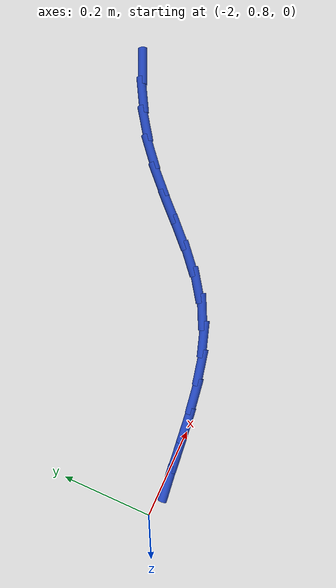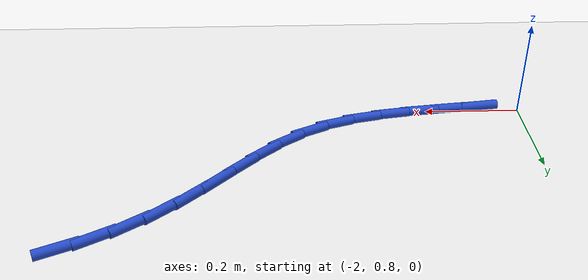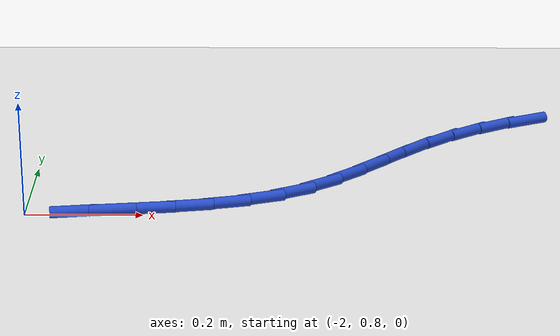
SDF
<sdf version="1.6">
 <world name="default">
  <model name="ground_plane">
   <static>1</static>
   <link name="link">
    <collision name="collision">
     <geometry><plane><normal>0 0 1</normal><size>100 100</size></plane></geometry>
     <surface><friction><ode><mu>100</mu><mu2>50</mu2></ode></friction></surface>
    </collision>
    <visual name="visual">
     <cast_shadows>0</cast_shadows>
     <geometry><plane><normal>0 0 1</normal><size>100 100</size></plane></geometry>
     <material>
      <script><uri>file://media/materials/scripts/gazebo.material</uri><name>Gazebo/WhiteGlow</name></script>
     </material>
    </visual>
   </link>
  </model>
  <model name="line">
   <link name="link_30">
    <pose>-1.1135426268761766 1.2215615842198069 0.01 0 1.57 0.42800671663458834</pose>
    <collision name="collision">
     <geometry><cylinder><radius>0.01</radius><length>0.08</length></cylinder></geometry>
    </collision>
    <visual name="visual">
     <material>
      <script><name>Gazebo/Blue</name><uri>file://media/materials/scripts/gazebo.material</uri></script>
     </material>
     <geometry><cylinder><radius>0.01</radius><length>0.08</length></cylinder></geometry>
    </visual>
   </link>
   <link name="link_31">
    <pose>-1.1711381497687974 1.195285891175266 0.01 0 1.57 0.52345021329601</pose>
    <collision name="collision">
     <geometry><cylinder><radius>0.01</radius><length>0.08</length></cylinder></geometry>
    </collision>
    <visual name="visual">
     <material>
      <script><name>Gazebo/Blue</name><uri>file://media/materials/scripts/gazebo.material</uri></script>
     </material>
     <geometry><cylinder><radius>0.01</radius><length>0.08</length></cylinder></geometry>
    </visual>
   </link>
   <link name="link_32">
    <pose>-1.226088558995479 1.1635711414284515 0.01 0 1.57 0.6207367791391263</pose>
    <collision name="collision">
     <geometry><cylinder><radius>0.01</radius><length>0.08</length></cylinder></geometry>
    </collision>
    <visual name="visual">
     <material>
      <script><name>Gazebo/Blue</name><uri>file://media/materials/scripts/gazebo.material</uri></script>
     </material>
     <geometry><cylinder><radius>0.01</radius><length>0.08</length></cylinder></geometry>
    </visual>
   </link>
   <link name="link_33">
    <pose>-1.277481644606737 1.1268239605972783 0.01 0 1.57 0.7170533390082382</pose>
    <collision name="collision">
     <geometry><cylinder><radius>0.01</radius><length>0.08</length></cylinder></geometry>
    </collision>
    <visual name="visual">
     <material>
      <script><name>Gazebo/Blue</name><uri>file://media/materials/scripts/gazebo.material</uri></script>
     </material>
     <geometry><cylinder><radius>0.01</radius><length>0.08</length></cylinder></geometry>
    </visual>
   </link>
   <link name="link_34">
    <pose>-1.3247097782590604 1.0856472645593227 0.01 0 1.57 0.7828931909869404</pose>
    <collision name="collision">
     <geometry><cylinder><radius>0.01</radius><length>0.08</length></cylinder></geometry>
    </collision>
    <visual name="visual">
     <material>
      <script><name>Gazebo/Blue</name><uri>file://media/materials/scripts/gazebo.material</uri></script>
     </material>
     <geometry><cylinder><radius>0.01</radius><length>0.08</length></cylinder></geometry>
    </visual>
   </link>
   <link name="link_35">
    <pose>-1.3688487571703896 1.0417288674069503 0.01 0 1.57 0.8071066593342363</pose>
    <collision name="collision">
     <geometry><cylinder><radius>0.01</radius><length>0.08</length></cylinder></geometry>
    </collision>
    <visual name="visual">
     <material>
      <script><name>Gazebo/Blue</name><uri>file://media/materials/scripts/gazebo.material</uri></script>
     </material>
     <geometry><cylinder><radius>0.01</radius><length>0.08</length></cylinder></geometry>
    </visual>
   </link>
   <link name="link_36">
    <pose>-1.4115527672647372 0.9971293308544245 0.01 0 1.57 0.788834546426766</pose>
    <collision name="collision">
     <geometry><cylinder><radius>0.01</radius><length>0.08</length></cylinder></geometry>
    </collision>
    <visual name="visual">
     <material>
      <script><name>Gazebo/Blue</name><uri>file://media/materials/scripts/gazebo.material</uri></script>
     </material>
     <geometry><cylinder><radius>0.01</radius><length>0.08</length></cylinder></geometry>
    </visual>
   </link>
   <link name="link_37">
    <pose>-1.4544765196927487 0.9539095551028706 0.01 0 1.57 0.7261244506977912</pose>
    <collision name="collision">
     <geometry><cylinder><radius>0.01</radius><length>0.08</length></cylinder></geometry>
    </collision>
    <visual name="visual">
     <material>
      <script><name>Gazebo/Blue</name><uri>file://media/materials/scripts/gazebo.material</uri></script>
     </material>
     <geometry><cylinder><radius>0.01</radius><length>0.08</length></cylinder></geometry>
    </visual>
   </link>
   <link name="link_38">
    <pose>-1.4992747256050685 0.9141304403534144 0.01 0 1.57 0.6169258833356325</pose>
    <collision name="collision">
     <geometry><cylinder><radius>0.01</radius><length>0.08</length></cylinder></geometry>
    </collision>
    <visual name="visual">
     <material>
      <script><name>Gazebo/Blue</name><uri>file://media/materials/scripts/gazebo.material</uri></script>
     </material>
     <geometry><cylinder><radius>0.01</radius><length>0.08</length></cylinder></geometry>
    </visual>
   </link>
   <link name="link_39">
    <pose>-1.5476020961523411 0.8798528868071804 0.01 0 1.57 0.46648202412776013</pose>
    <collision name="collision">
     <geometry><cylinder><radius>0.01</radius><length>0.08</length></cylinder></geometry>
    </collision>
    <visual name="visual">
     <material>
      <script><name>Gazebo/Blue</name><uri>file://media/materials/scripts/gazebo.material</uri></script>
     </material>
     <geometry><cylinder><radius>0.01</radius><length>0.08</length></cylinder></geometry>
    </visual>
   </link>
   <link name="link_40">
    <pose>-1.6009827388953783 0.8529731678862243 0.01 0 1.57 0.3254891766191012</pose>
    <collision name="collision">
     <geometry><cylinder><radius>0.01</radius><length>0.08</length></cylinder></geometry>
    </collision>
    <visual name="visual">
     <material>
      <script><name>Gazebo/Blue</name><uri>file://media/materials/scripts/gazebo.material</uri></script>
     </material>
     <geometry><cylinder><radius>0.01</radius><length>0.08</length></cylinder></geometry>
    </visual>
   </link>
   <link name="link_41">
    <pose>-1.6592825787326158 0.8332974056533047 0.01 0 1.57 0.2238538619899352</pose>
    <collision name="collision">
     <geometry><cylinder><radius>0.01</radius><length>0.08</length></cylinder></geometry>
    </collision>
    <visual name="visual">
     <material>
      <script><name>Gazebo/Blue</name><uri>file://media/materials/scripts/gazebo.material</uri></script>
     </material>
     <geometry><cylinder><radius>0.01</radius><length>0.08</length></cylinder></geometry>
    </visual>
   </link>
   <link name="link_42">
    <pose>-1.721227327401754 0.819194475152583 0.01 0 1.57 0.1571782628366233</pose>
    <collision name="collision">
     <geometry><cylinder><radius>0.01</radius><length>0.08</length></cylinder></geometry>
    </collision>
    <visual name="visual">
     <material>
      <script><name>Gazebo/Blue</name><uri>file://media/materials/scripts/gazebo.material</uri></script>
     </material>
     <geometry><cylinder><radius>0.01</radius><length>0.08</length></cylinder></geometry>
    </visual>
   </link>
   <link name="link_43">
    <pose>-1.7855202633333835 0.809004974080726 0.01 0 1.57 0.12084899288458972</pose>
    <collision name="collision">
     <geometry><cylinder><radius>0.01</radius><length>0.08</length></cylinder></geometry>
    </collision>
    <visual name="visual">
     <material>
      <script><name>Gazebo/Blue</name><uri>file://media/materials/scripts/gazebo.material</uri></script>
     </material>
     <geometry><cylinder><radius>0.01</radius><length>0.08</length></cylinder></geometry>
    </visual>
   </link>
   <link name="link_44">
    <pose>-1.8508646649580924 0.8010695001343999 0.01 0 1.57 0.11228979260151709</pose>
    <collision name="collision">
     <geometry><cylinder><radius>0.01</radius><length>0.08</length></cylinder></geometry>
    </collision>
    <visual name="visual">
     <material>
      <script><name>Gazebo/Blue</name><uri>file://media/materials/scripts/gazebo.material</uri></script>
     </material>
     <geometry><cylinder><radius>0.01</radius><length>0.08</length></cylinder></geometry>
    </visual>
   </link>
   <link name="link_45">
    <pose>-1.9159638107064716 0.7937286510102713 0.01 0 1.57 0.1314899261483285</pose>
    <collision name="collision">
     <geometry><cylinder><radius>0.01</radius><length>0.08</length></cylinder></geometry>
    </collision>
    <visual name="visual">
     <material>
      <script><name>Gazebo/Blue</name><uri>file://media/materials/scripts/gazebo.material</uri></script>
     </material>
     <geometry><cylinder><radius>0.01</radius><length>0.08</length></cylinder></geometry>
    </visual>
   </link>
  </model>
 </world>
</sdf>
